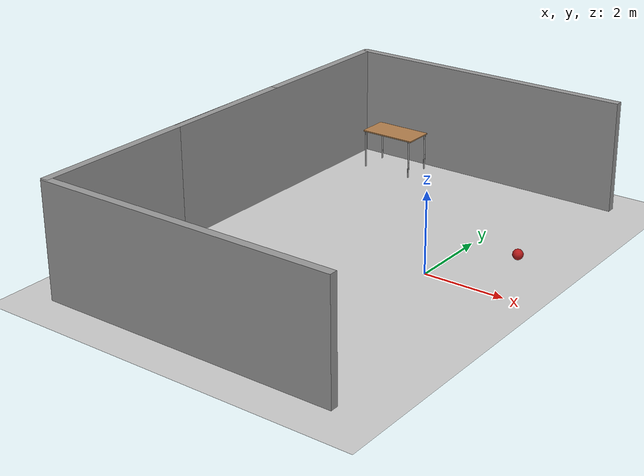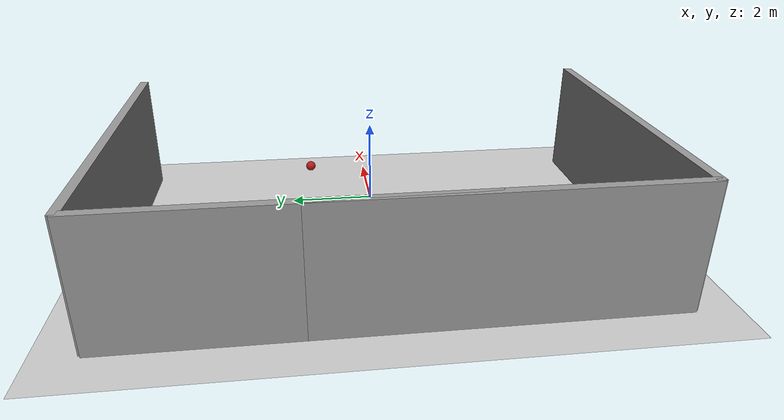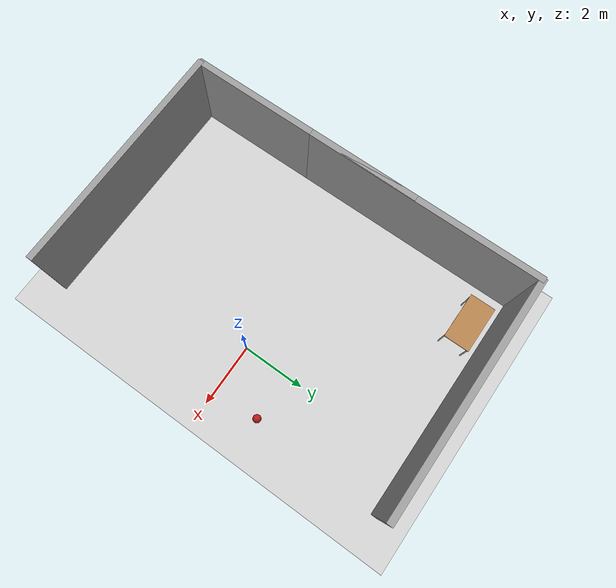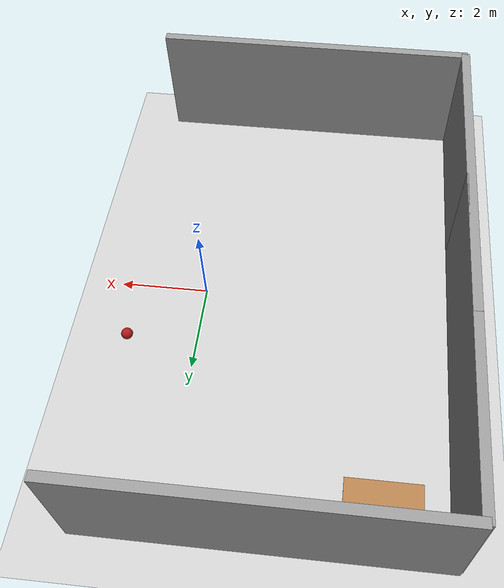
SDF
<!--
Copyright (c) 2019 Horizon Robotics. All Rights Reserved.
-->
<sdf version="1.5">
 <world name="default">
  <physics type="ode">
   <max_step_size>0.001</max_step_size>
   <real_time_factor>1</real_time_factor>
   <real_time_update_rate>0</real_time_update_rate>
   <ode>
    <solver>quick</solver>
    <constraints>
     <contact_max_correcting_vel>1</contact_max_correcting_vel>
     <contact_surface_layer>0.001</contact_surface_layer>
    </constraints>
   </ode>
  </physics>
  <include><uri>model://texture_ground_plane</uri></include>
  <include><uri>model://sun</uri></include>
  <model name="placing_table">
   <static>1</static>
   <include><uri>model://table</uri></include>
   <pose>-4.20 4.92 0 0 -0 0</pose>
  </model>
  <model name="ball"><include><uri>model://ball</uri></include><pose>1.50 1.5 0.2 0 -0 0</pose></model>
  <model name="grey_wall_left">
   <static>1</static>
   <include><uri>model://grey_wall</uri></include>
   <pose>-2 5.7 0 0 -0 0</pose>
  </model>
  <model name="grey_wall_right">
   <static>1</static>
   <include><uri>model://grey_wall</uri></include>
   <pose>-2 -5.7 0 0 -0 0</pose>
  </model>
  <model name="grey_wall_behind0">
   <static>1</static>
   <include><uri>model://grey_wall</uri></include>
   <pose>-5.7 2 0 0 -0 1.5708</pose>
  </model>
  <model name="grey_wall_behind1">
   <static>1</static>
   <include><uri>model://grey_wall</uri></include>
   <pose>-5.7 -2 0 0 -0 1.5708</pose>
  </model>
 </world>
</sdf>

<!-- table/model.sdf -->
<sdf version="1.5">
  <model name="table">
    <static>true</static>
    <link name="link">
      <collision name="surface">
        <pose>0 0 1.0 0 0 0</pose>
        <geometry>
          <box>
            <size>1.5 0.8 0.03</size>
          </box>
        </geometry>
        <surface>
          <friction>
            <ode>
              <mu>0.6</mu>
              <mu2>0.6</mu2>
            </ode>
          </friction>
        </surface>
      </collision>
      <visual name="visual1">
        <pose>0 0 1.0 0 0 0</pose>
        <geometry>
          <box>
            <size>1.5 0.8 0.03</size>
          </box>
        </geometry>
        <material>
          <script>
            <uri>model://media/materials/scripts/gazebo.material</uri>
            <name>Gazebo/Wood</name>
          </script>
        </material>
      </visual>
      <collision name="front_left_leg">
        <pose>0.68 0.38 0.5 0 0 0</pose>
        <geometry>
          <cylinder>
            <radius>0.02</radius>
            <length>1.0</length>
          </cylinder>
        </geometry>
      </collision>
      <visual name="front_left_leg">
        <pose>0.68 0.38 0.5 0 0 0</pose>
        <geometry>
          <cylinder>
            <radius>0.02</radius>
            <length>1.0</length>
          </cylinder>
        </geometry>
        <material>
          <script>
            <uri>model://media/materials/scripts/gazebo.material</uri>
            <name>Gazebo/Grey</name>
          </script>
        </material>
      </visual>
      <collision name="front_right_leg">
        <pose>0.68 -0.38 0.5 0 0 0</pose>
        <geometry>
          <cylinder>
            <radius>0.02</radius>
            <length>1.0</length>
          </cylinder>
        </geometry>
      </collision>
      <visual name="front_right_leg">
        <pose>0.68 -0.38 0.5 0 0 0</pose>
        <geometry>
          <cylinder>
            <radius>0.02</radius>
            <length>1.0</length>
          </cylinder>
        </geometry>
        <material>
          <script>
            <uri>model://media/materials/scripts/gazebo.material</uri>
            <name>Gazebo/Grey</name>
          </script>
        </material>
      </visual>
      <collision name="back_right_leg">
        <pose>-0.68 -0.38 0.5 0 0 0</pose>
        <geometry>
          <cylinder>
            <radius>0.02</radius>
            <length>1.0</length>
          </cylinder>
        </geometry>
      </collision>
      <visual name="back_right_leg">
        <pose>-0.68 -0.38 0.5 0 0 0</pose>
        <geometry>
          <cylinder>
            <radius>0.02</radius>
            <length>1.0</length>
          </cylinder>
        </geometry>
        <material>
          <script>
            <uri>model://media/materials/scripts/gazebo.material</uri>
            <name>Gazebo/Grey</name>
          </script>
        </material>
      </visual>
      <collision name="back_left_leg">
        <pose>-0.68 0.38 0.5 0 0 0</pose>
        <geometry>
          <cylinder>
            <radius>0.02</radius>
            <length>1.0</length>
          </cylinder>
        </geometry>
      </collision>
      <visual name="back_left_leg">
        <pose>-0.68 0.38 0.5 0 0 0</pose>
        <geometry>
          <cylinder>
            <radius>0.02</radius>
            <length>1.0</length>
          </cylinder>
        </geometry>
        <material>
          <script>
            <uri>model://media/materials/scripts/gazebo.material</uri>
            <name>Gazebo/Grey</name>
          </script>
        </material>
      </visual>
    </link>
  </model>
</sdf>

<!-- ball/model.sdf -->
<sdf version="1.5">
  <model name="ball">
    <pose>0 0 0 0 0 0</pose>
    <link name="link">
      <pose>0 0 0.127 0 0 0</pose>
      <inertial>
        <mass>0.15</mass>
        <inertia>
          <ixx>0.003226667</ixx>
          <ixy>0</ixy>
          <ixz>0</ixz>
          <iyy>0.003226667</iyy>
          <iyz>0</iyz>
          <izz>0.003226667</izz>
        </inertia>
      </inertial>

      <visual name="visual">
        <geometry>
          <sphere>
            <radius>0.127</radius>
          </sphere>
        </geometry>
        <material>
          <ambient>0.6 0.1 0.1 1</ambient>
          <diffuse>0.7 0.1 0.1 1</diffuse>
          <specular>0 0 0 0</specular>
          <emissive>0.0 0 0 1</emissive>
        </material>
      </visual>

      <collision name="collision">
        <geometry>
          <sphere>
            <radius>0.127</radius>
          </sphere>
        </geometry>
        <surface>
          <bounce>
            <restitution_coefficient>0.6</restitution_coefficient>
            <threshold>0</threshold>
          </bounce>
          <contact>
            <ode>
              <max_vel>5</max_vel>
              <min_depth>0.001</min_depth>
            </ode>
          </contact>
        </surface>
      </collision>
    </link>
  </model>
</sdf>

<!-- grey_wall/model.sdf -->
<sdf version="1.5">
  <model name="grey_wall">
    <static>true</static>
    <link name="link">
      <pose>0 0 1.4 0 0 0</pose>
      <collision name="collision">
        <geometry>
          <box>
            <size>7.5 0.2 2.8</size>
          </box>
        </geometry>
      </collision>
      <visual name="visual">
        <cast_shadows>false</cast_shadows>
        <geometry>
          <box>
            <size>7.5 0.2 2.8</size>
          </box>
        </geometry>
        <material>
          <script>
            <uri>model://../model_source/models/grey_wall/materials/scripts</uri>
            <uri>model://../model_source/models/grey_wall/materials/textures</uri>
            <name>vrc/grey_wall</name>
          </script>
        </material>
      </visual>
    </link>
  </model>
</sdf>

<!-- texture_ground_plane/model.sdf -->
<sdf version="1.5">
  <model name="ground_plane">
    <static>true</static>
    <link name="link">
      <collision name="collision">
        <geometry>
          <plane>
            <normal>0 0 1</normal>
            <size>20 20</size>
          </plane>
        </geometry>
        <surface>
          <friction>
            <ode>
              <mu>100</mu>
              <mu2>50</mu2>
            </ode>
          </friction>
        </surface>
      </collision>
      <visual name="visual">
        <cast_shadows>false</cast_shadows>
        <geometry>
          <plane>
            <normal>0 0 1</normal>
            <size>20 20</size>
          </plane>
        </geometry>
        <material>
          <script>
            <uri>model://texture_ground_plane/materials/scripts/texture_ground_plane.material</uri>
            <uri>model://texture_ground_plane/materials/textures/ground_texture.jpeg</uri>
            <name>TextureGroundPlane/Image</name>
          </script>
        </material>
      </visual>
    </link>
  </model>
</sdf>
